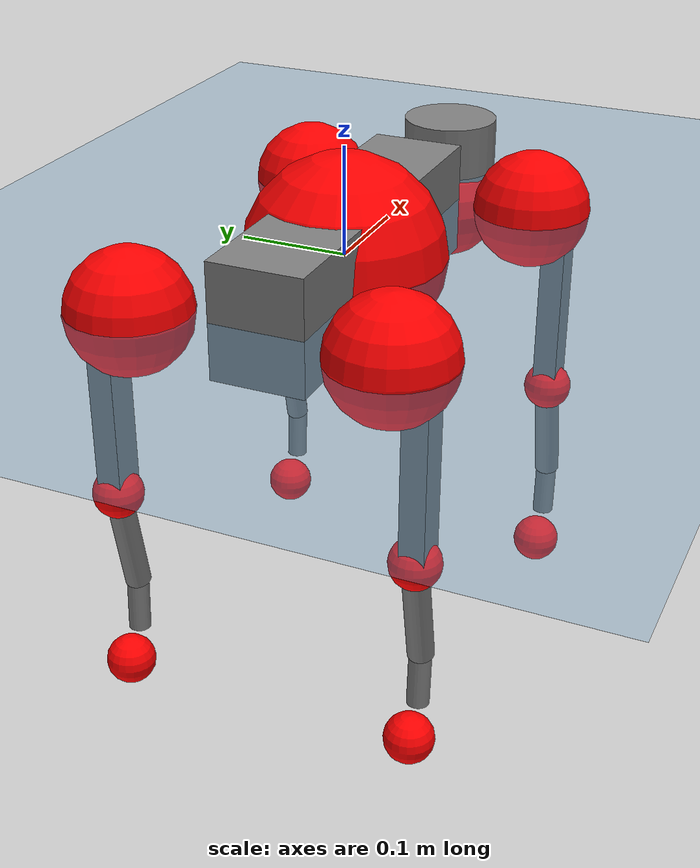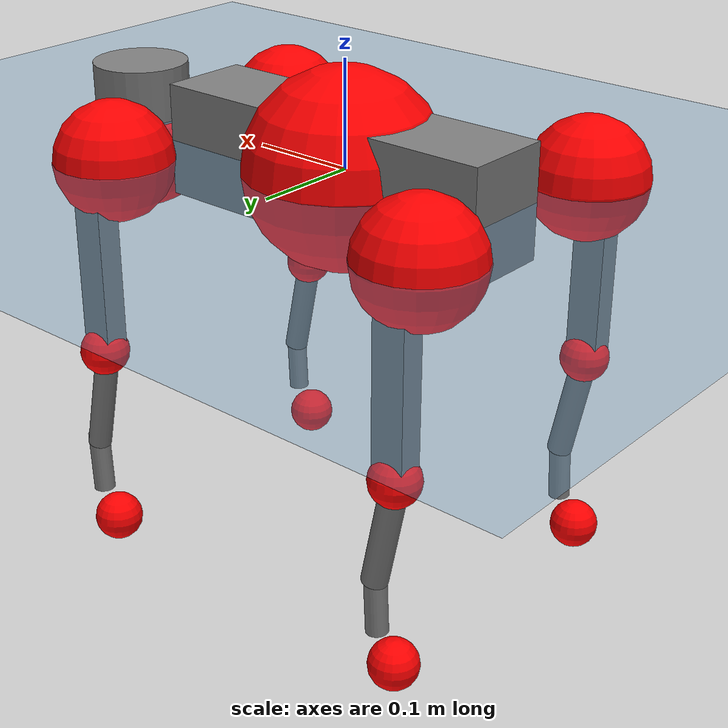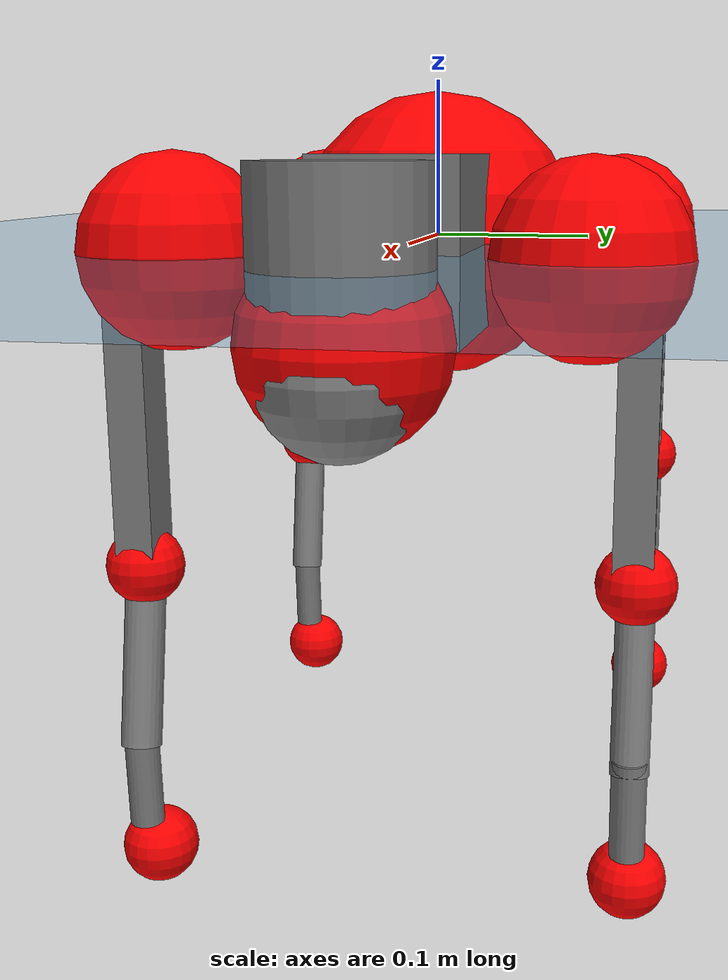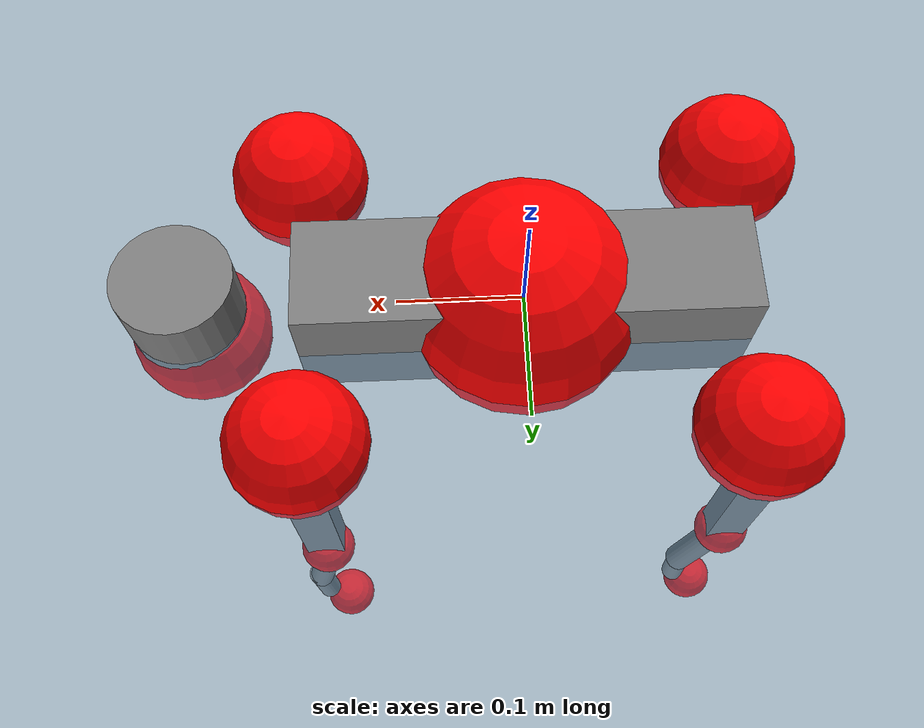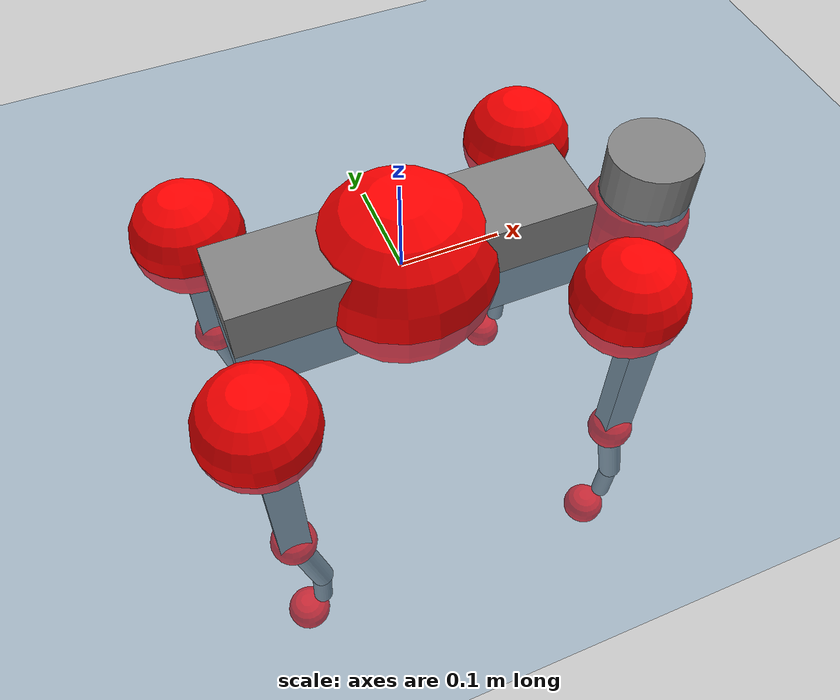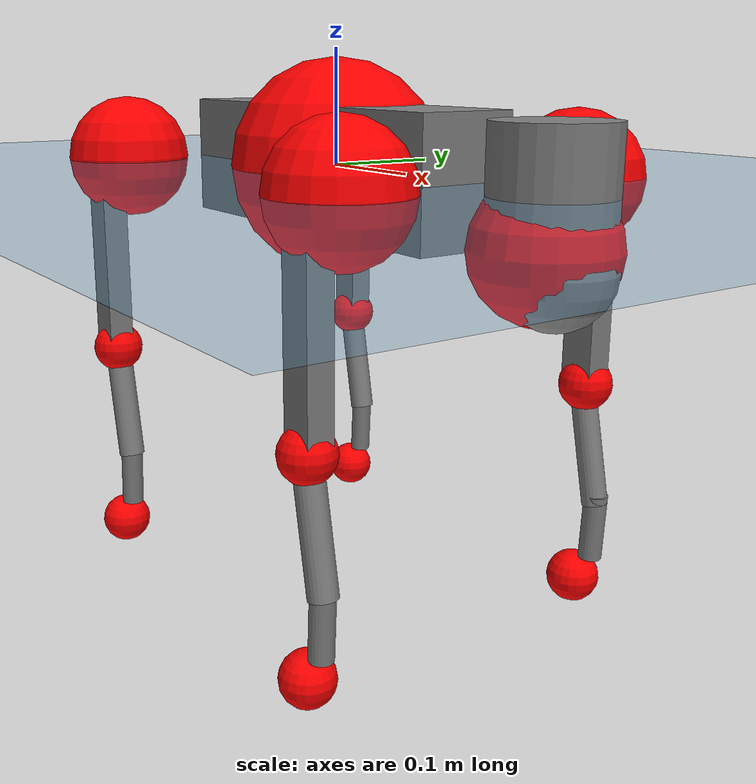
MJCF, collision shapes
<mujoco model="go2">
  <compiler angle="radian" assetdir="assets" balanceinertia="true" inertiafromgeom="false"/>

  <option timestep="0.005" density="1.2" viscosity="2e-05"/>

  <size nkey="1"/>

  <visual>
    <quality shadowsize="8192"/>
    <map shadowclip="0.5"/>
  </visual>

  <default>
    <default class="/">
      <geom contype="0" conaffinity="0" group="1" solref="-1000 -80"/>
      <site size="0.01 0.005 0.005" group="5"/>
      <general forcelimited="true" biastype="affine" gainprm="20" biasprm="0 -20 -0.5"/>
      <default class="go2">
        <joint armature="0.01" damping="0.01" frictionloss="0.2"/>
        <geom condim="1" margin="0.001"/>
        <default class="visual">
          <geom type="mesh" group="2"/>
        </default>
        <default class="collision">
          <geom group="3"/>
          <default class="foot">
            <geom size="0.022 0 0" condim="6" priority="1" friction="0.8 0.02 0.01" solimp="0.015 1 0.022"/>
          </default>
        </default>
        <default class="reward_collision_sphere">
          <geom group="5" rgba="1 0 0 1"/>
        </default>
      </default>
    </default>
  </default>

  <asset>
    <texture type="skybox" colorspace="auto" name="//unnamed_texture_0" builtin="gradient" rgb1="0.95 0.95 0.95" rgb2="0.95 0.95 0.95" width="100" height="600"/>
    <texture type="2d" colorspace="auto" name="texplane" builtin="checker" rgb1="0.345 0.575 0.748" rgb2="0.345 0.575 0.748" markrgb="1 1 1" width="512" height="512"/>
    <material name="MatPlane" class="/" texture="texplane" texuniform="true" texrepeat="2 2" specular="0.9"/>
    <material name="metal" class="/" rgba="0.9 0.95 0.95 1"/>
    <material name="black" class="/" rgba="0 0 0 1"/>
    <material name="white" class="/"/>
    <material name="gray" class="/" rgba="0.671705 0.692426 0.77427 1"/>
    <mesh name="base_0" class="/" file="base_0.obj"/>
    <mesh name="base_1" class="/" file="base_1.obj"/>
    <mesh name="base_2" class="/" file="base_2.obj"/>
    <mesh name="base_3" class="/" file="base_3.obj"/>
    <mesh name="base_4" class="/" file="base_4.obj"/>
    <mesh name="hip_0" class="/" file="hip_0.obj"/>
    <mesh name="hip_1" class="/" file="hip_1.obj"/>
    <mesh name="thigh_0" class="/" file="thigh_0.obj"/>
    <mesh name="thigh_1" class="/" file="thigh_1.obj"/>
    <mesh name="thigh_mirror_0" class="/" file="thigh_mirror_0.obj"/>
    <mesh name="thigh_mirror_1" class="/" file="thigh_mirror_1.obj"/>
    <mesh name="calf_0" class="/" file="calf_0.obj"/>
    <mesh name="calf_1" class="/" file="calf_1.obj"/>
    <mesh name="calf_mirror_0" class="/" file="calf_mirror_0.obj"/>
    <mesh name="calf_mirror_1" class="/" file="calf_mirror_1.obj"/>
    <mesh name="foot" class="/" file="foot.obj"/>
  </asset>

  <worldbody>
    <geom name="floor" class="/" size="100 100 0.125" type="plane" group="0" material="MatPlane"/>
    <light name="toplight_shadow" class="/" pos="0 0 5" dir="0.0990148 0.0990148 -0.990148" type="directional" ambient="0.04 0.04 0.04" diffuse="0.55 0.55 0.55" specular="0.12 0.12 0.12"/>
    <light name="toplight_fill" class="/" pos="0 0 5" dir="0.0990148 0.0990148 -0.990148" type="directional" castshadow="false" ambient="0.04 0.04 0.04" diffuse="0.3 0.3 0.3" specular="0.08 0.08 0.08"/>
    <body name="trunk" childclass="go2" pos="0.000700605 -0.000303193 8.29175e-05" quat="1 -3.31127e-05 0.000211599 0.000413009">
      <inertial pos="0.0170923 -0.00299552 -0.00528943" quat="0.00258732 0.714545 -0.00481392 0.699569" mass="5.73378" diaginertia="0.0719055 0.100336 0.0112379"/>
      <joint name="//unnamed_joint_0" type="free" armature="0" damping="0" frictionloss="0"/>
      <geom name="//unnamed_geom_1" class="visual" material="black" mesh="base_0"/>
      <geom name="//unnamed_geom_2" class="visual" material="black" mesh="base_1"/>
      <geom name="//unnamed_geom_3" class="visual" material="black" mesh="base_2"/>
      <geom name="//unnamed_geom_4" class="visual" material="white" mesh="base_3"/>
      <geom name="//unnamed_geom_5" class="visual" material="gray" mesh="base_4"/>
      <geom name="trunk_1" class="collision" size="0.17489 0.0434669 0.0529971" type="box"/>
      <geom name="trunk_2" class="collision" size="0.0464887 0.0418398" pos="0.263491 0 0.00858554" type="cylinder"/>
      <geom name="trunk_3" class="collision" size="0.0436993" pos="0.270887 0 -0.0515132"/>
      <geom name="//unnamed_geom_9" class="reward_collision_sphere" size="0.0929773"/>
      <geom name="//unnamed_geom_10" class="reward_collision_sphere" size="0.0557864" pos="0.258868 0 -0.0386349"/>
      <site name="imu" pos="-0.0101698 0.000406856 0.0228245" size="0.00929773"/>
      <camera name="track" pos="0 -2.01247 0" quat="0.707107 0.707107 0 0" mode="trackcom"/>
      <camera name="ego_camera" pos="0.288453 0 0.0386349" quat="-0.5 -0.5 0.5 0.5"/>
      <body name="FL_hip" pos="0.175386 0.0439836 -0.00210178" quat="1 -0.000135596 -0.000319512 0.000355861">
        <inertial pos="-0.00504652 -0.000341897 -0.000238412" quat="0.497365 0.499664 0.504972 0.497964" mass="0.539233" diaginertia="0.000583752 0.000577194 0.000217309"/>
        <joint name="FL_hip_joint" pos="0 0 0" axis="0.999961 -0.00840809 0.00279681" range="-1.04545 1.06153" armature="0.00949432" damping="0.0141065" frictionloss="0.164643"/>
        <geom name="//unnamed_geom_11" class="visual" material="metal" mesh="hip_0"/>
        <geom name="//unnamed_geom_12" class="visual" material="gray" mesh="hip_1"/>
        <geom name="//unnamed_geom_13" class="collision" size="0.0427696 0.0185955" pos="0 0.0804989 0" quat="0.707107 0.707107 0 0" type="cylinder"/>
        <geom name="//unnamed_geom_14" class="reward_collision_sphere" size="0.0557864" pos="0 0.0704365 0"/>
        <body name="FL_thigh" pos="-0.00264004 0.0980216 0.00249427" quat="0.999999 0.000789204 -0.000885262 -0.000609503">
          <inertial pos="-0.00356235 -0.022225 -0.0263624" quat="0.826663 0.0801546 -0.00899943 0.556886" mass="0.902774" diaginertia="0.00403446 0.00587658 0.000410581"/>
          <joint name="FL_thigh_joint" pos="0 0 0" axis="-0.000228928 1 -9.5716e-05" stiffness="0.00888539" range="-1.51301 3.53703" armature="0.00964975" damping="0.0167905" frictionloss="0.16938"/>
          <geom name="//unnamed_geom_15" class="visual" material="metal" mesh="thigh_0"/>
          <geom name="//unnamed_geom_16" class="visual" material="gray" mesh="thigh_1"/>
          <geom name="//unnamed_geom_17" class="collision" size="0.0990208 0.0113897 0.0158061" pos="0 0 -0.091436" quat="0.707107 0 0.707107 0" type="box"/>
          <body name="FL_calf" pos="0.000210437 0.00187877 -0.182346" quat="1 0.000341297 0.000180988 0.000243403">
            <inertial pos="0.00564201 -0.0014918 -0.122375" quat="0.711818 0.00354154 -0.00385437 0.702345" mass="0.196508" diaginertia="0.000984737 0.00151855 2.48089e-05"/>
            <joint name="FL_calf_joint" pos="0 0 0" axis="0.00436601 0.999867 -0.0157023" range="-2.67906 -0.829257" armature="0.00927483" damping="0.002236" frictionloss="0.190249"/>
            <geom name="//unnamed_geom_18" class="visual" material="gray" mesh="calf_0"/>
            <geom name="//unnamed_geom_19" class="visual" material="black" mesh="calf_1"/>
            <geom name="FL_calf0" class="collision" size="0.0111573 0.0557864" pos="0.00739624 0 -0.0515132" quat="0.994493 0 -0.104807 0" type="cylinder"/>
            <geom name="//unnamed_geom_21" class="collision" size="0.0102275 0.0302176" pos="0.0184906 0 -0.127066" quat="0.999688 0 0.0249974 0" type="cylinder"/>
            <geom name="//unnamed_geom_22" class="visual" pos="0 0 -0.182872" quat="1 0 0 0" material="black" mesh="foot"/>
            <geom name="FL_foot" class="foot" size="0.0159394" pos="-0.00184906 0 -0.182872"/>
            <geom name="//unnamed_geom_24" class="reward_collision_sphere" size="0.0232443"/>
            <geom name="//unnamed_geom_25" class="reward_collision_sphere" size="0.0232443" pos="-0.00184906 0 -0.182872"/>
            <site name="FL_foot" class="foot" pos="-0.00184906 0 -0.182872" size="0.00929773"/>
          </body>
        </body>
      </body>
      <body name="FR_hip" pos="0.176523 -0.0464267 -0.000114602" quat="1 -4.27982e-05 0.000218437 0.000230246">
        <inertial pos="-0.0068392 -0.00391566 -0.00270647" quat="0.494838 0.497332 0.502986 0.504779" mass="0.539623" diaginertia="0.000569127 0.000627177 0.000213669"/>
        <joint name="FR_hip_joint" pos="0 0 0" axis="0.999889 0.0148818 0.0010833" stiffness="0.00080772" range="-1.07219 1.0481" armature="0.00943289" damping="0" frictionloss="0.188591"/>
        <geom name="//unnamed_geom_26" class="visual" pos="0 1.28655e-09 5.51827e-08" quat="4.63268e-05 1 0 0" material="metal" mesh="hip_0"/>
        <geom name="//unnamed_geom_27" class="visual" pos="0 2.08565e-09 -1.36488e-07" quat="4.63268e-05 1 0 0" material="gray" mesh="hip_1"/>
        <geom name="//unnamed_geom_28" class="collision" size="0.0427696 0.0185955" pos="0 -0.0804989 0" quat="0.707107 0.707107 0 0" type="cylinder"/>
        <geom name="//unnamed_geom_29" class="reward_collision_sphere" size="0.0557864" pos="0 -0.0704365 0"/>
        <body name="FR_thigh" pos="0.00200725 -0.0982214 -0.00224701" quat="0.999999 0.000582993 -0.000910583 -0.000755221">
          <inertial pos="-0.000891773 0.0227785 -0.029834" quat="0.545132 -0.0147364 0.0863969 0.833756" mass="0.969846" diaginertia="0.00396346 0.00589437 0.000429306"/>
          <joint name="FR_thigh_joint" pos="0 0 0" axis="0.00260571 -0.999992 -0.00317607" range="-3.49062 1.59051" armature="0.00836337" damping="0.0137508" frictionloss="0.192779"/>
          <geom name="//unnamed_geom_30" class="visual" material="metal" mesh="thigh_mirror_0"/>
          <geom name="//unnamed_geom_31" class="visual" material="gray" mesh="thigh_mirror_1"/>
          <geom name="//unnamed_geom_32" class="collision" size="0.0990208 0.0113897 0.0158061" pos="0 0 -0.091436" quat="0.707107 0 0.707107 0" type="box"/>
          <body name="FR_calf" pos="-0.00176224 -0.000458737 -0.182941" quat="1 -0.000252708 -0.000128279 -0.000920726">
            <inertial pos="0.003112 0.000773234 -0.121469" quat="0.695706 0.000404986 -0.0022176 0.718323" mass="0.205234" diaginertia="0.00104872 0.001541 2.55636e-05"/>
            <joint name="FR_calf_joint" pos="0 0 0" axis="0.00101652 -0.999963 -0.00848327" range="0.784195 2.68328" armature="0.0106993" damping="0.0205296" frictionloss="0.19493"/>
            <geom name="//unnamed_geom_33" class="visual" material="gray" mesh="calf_mirror_0"/>
            <geom name="//unnamed_geom_34" class="visual" material="black" mesh="calf_mirror_1"/>
            <geom name="FR_calf0" class="collision" size="0.0120871 0.0557864" pos="0.0092453 0 -0.0515132" quat="0.995004 0 -0.0998334 0" type="cylinder"/>
            <geom name="//unnamed_geom_36" class="collision" size="0.0102275 0.0302176" pos="0.0184906 0 -0.127066" quat="0.999688 0 0.0249974 0" type="cylinder"/>
            <geom name="//unnamed_geom_37" class="visual" pos="0 0 -0.182872" quat="1 0 0 0" material="black" mesh="foot"/>
            <geom name="FR_foot" class="foot" size="0.0203274" pos="-0.00184906 0 -0.182872"/>
            <geom name="//unnamed_geom_39" class="reward_collision_sphere" size="0.0232443"/>
            <geom name="//unnamed_geom_40" class="reward_collision_sphere" size="0.0232443" pos="-0.00184906 0 -0.182872"/>
            <site name="FR_foot" class="foot" pos="-0.00184906 0 -0.182872" size="0.00929773"/>
          </body>
        </body>
      </body>
      <body name="RL_hip" pos="-0.175927 0.0451082 -0.00303371" quat="1 -5.60259e-07 -1.23738e-06 1.19035e-05">
        <inertial pos="0.00479239 0.00467039 -0.00147281" quat="0.5031 0.507281 0.499713 0.489739" mass="0.563834" diaginertia="0.0006332 0.000642537 0.000226661"/>
        <joint name="RL_hip_joint" pos="0 0 0" axis="-0.999974 0.00721862 0.000334904" range="-1.05733 1.04398" armature="0.00974721" damping="0" frictionloss="0.186863"/>
        <geom name="//unnamed_geom_41" class="visual" pos="-5.74759e-10 0 -1.12666e-07" quat="4.63268e-05 0 1 0" material="metal" mesh="hip_0"/>
        <geom name="//unnamed_geom_42" class="visual" pos="-9.31753e-10 0 -9.99187e-08" quat="4.63268e-05 0 1 0" material="gray" mesh="hip_1"/>
        <geom name="//unnamed_geom_43" class="collision" size="0.0427696 0.0185955" pos="0 0.0804989 0" quat="0.707107 0.707107 0 0" type="cylinder"/>
        <geom name="//unnamed_geom_44" class="reward_collision_sphere" size="0.0557864" pos="0 0.0704365 0"/>
        <body name="RL_thigh" pos="0.000435751 0.0957181 0.00100313" quat="1 -4.36573e-06 -1.03041e-05 0.000182952">
          <inertial pos="-0.00560711 -0.0220889 -0.0307242" quat="0.829127 0.0847004 -0.0213698 0.552194" mass="0.890806" diaginertia="0.00377884 0.00601928 0.000398786"/>
          <joint name="RL_thigh_joint" pos="0 0 0" axis="0.00235423 0.999961 0.00849817" stiffness="0.0140331" range="-0.548945 4.49181" armature="0.00883539" damping="0" frictionloss="0.185792"/>
          <geom name="//unnamed_geom_45" class="visual" material="metal" mesh="thigh_0"/>
          <geom name="//unnamed_geom_46" class="visual" material="gray" mesh="thigh_1"/>
          <geom name="//unnamed_geom_47" class="collision" size="0.0990208 0.0113897 0.0158061" pos="0 0 -0.091436" quat="0.707107 0 0.707107 0" type="box"/>
          <body name="RL_calf" pos="-0.00074132 0.000500725 -0.183071" quat="1 -0.000290812 -0.000118876 8.46323e-05">
            <inertial pos="0.00712198 0.00223811 -0.121315" quat="0.711531 -0.00635192 0.00239755 0.702621" mass="0.198962" diaginertia="0.00100371 0.00160489 2.5371e-05"/>
            <joint name="RL_calf_joint" pos="0 0 0" axis="-0.0069802 0.999974 0.00206071" stiffness="0.00579404" range="-2.66666 -0.88537" armature="0.0105758" damping="0.017886" frictionloss="0.160407"/>
            <geom name="//unnamed_geom_48" class="visual" material="gray" mesh="calf_0"/>
            <geom name="//unnamed_geom_49" class="visual" material="black" mesh="calf_1"/>
            <geom name="RL_calf0" class="collision" size="0.0120871 0.0557864" pos="0.0092453 0 -0.0515132" quat="0.995004 0 -0.0998334 0" type="cylinder"/>
            <geom name="//unnamed_geom_51" class="collision" size="0.0102275 0.0302176" pos="0.0184906 0 -0.127066" quat="0.999688 0 0.0249974 0" type="cylinder"/>
            <geom name="//unnamed_geom_52" class="visual" pos="0 0 -0.182872" quat="1 0 0 0" material="black" mesh="foot"/>
            <geom name="RL_foot" class="foot" size="0.0183916" pos="-0.00184906 0 -0.182872"/>
            <geom name="//unnamed_geom_54" class="reward_collision_sphere" size="0.0232443"/>
            <geom name="//unnamed_geom_55" class="reward_collision_sphere" size="0.0232443" pos="-0.00184906 0 -0.182872"/>
            <site name="RL_foot" class="foot" pos="-0.00184906 0 -0.182872" size="0.00929773"/>
          </body>
        </body>
      </body>
      <body name="RR_hip" pos="-0.176586 -0.0482391 0.000944792" quat="1 -1.0454e-05 0.000303107 -0.000475889">
        <inertial pos="0.00301332 -0.00026329 -0.0028036" quat="0.508271 0.492765 0.495623 0.503191" mass="0.547312" diaginertia="0.000578098 0.000600154 0.000217329"/>
        <joint name="RR_hip_joint" pos="0 0 0" axis="-0.999904 0.00836312 0.011068" stiffness="1.91625e-05" range="-1.10185 1.07472" armature="0.00901487" damping="0" frictionloss="0.186212"/>
        <geom name="//unnamed_geom_56" class="visual" pos="5.77588e-10 1.28655e-09 -1.67849e-07" quat="2.14617e-09 4.63268e-05 4.63268e-05 -1" material="metal" mesh="hip_0"/>
        <geom name="//unnamed_geom_57" class="visual" pos="9.24756e-10 2.08565e-09 3.65691e-08" quat="2.14617e-09 4.63268e-05 4.63268e-05 -1" material="gray" mesh="hip_1"/>
        <geom name="//unnamed_geom_58" class="collision" size="0.0427696 0.0185955" pos="0 -0.0804989 0" quat="0.707107 0.707107 0 0" type="cylinder"/>
        <geom name="//unnamed_geom_59" class="reward_collision_sphere" size="0.0557864" pos="0 -0.0704365 0"/>
        <body name="RR_thigh" pos="0.00255199 -0.0954235 -0.00163992" quat="0.999999 0.000768598 0.000997884 -9.85671e-05">
          <inertial pos="-0.00278884 0.0243611 -0.0289328" quat="0.551559 -0.0206402 0.0835765 0.829682" mass="0.871942" diaginertia="0.00378347 0.00589592 0.00040374"/>
          <joint name="RR_thigh_joint" pos="0 0 0" axis="3.55576e-06 -1 3.49172e-05" stiffness="0.00325596" range="-4.49972 0.53174" armature="0.00980413" damping="0.0181342" frictionloss="0.187541"/>
          <geom name="//unnamed_geom_60" class="visual" material="metal" mesh="thigh_mirror_0"/>
          <geom name="//unnamed_geom_61" class="visual" material="gray" mesh="thigh_mirror_1"/>
          <geom name="//unnamed_geom_62" class="collision" size="0.0990208 0.0113897 0.0158061" pos="0 0 -0.091436" quat="0.707107 0 0.707107 0" type="box"/>
          <body name="RR_calf" pos="0.000403268 0.00220452 -0.182478" quat="0.999999 0.000401572 0.00115223 -0.000400984">
            <inertial pos="0.00835098 -0.000286456 -0.122209" quat="0.703298 0.00189805 0.0131842 0.710771" mass="0.197062" diaginertia="0.000983875 0.00151116 2.43146e-05"/>
            <joint name="RR_calf_joint" pos="0 0 0" axis="-0.00360585 -0.999988 -0.00317121" range="0.826946 2.78028" armature="0.00932349" damping="0.020366" frictionloss="0.19409"/>
            <geom name="//unnamed_geom_63" class="visual" material="gray" mesh="calf_mirror_0"/>
            <geom name="//unnamed_geom_64" class="visual" material="black" mesh="calf_mirror_1"/>
            <geom name="RR_calf0" class="collision" size="0.0120871 0.0557864" pos="0.0092453 0 -0.0515132" quat="0.995004 0 -0.0998334 0" type="cylinder"/>
            <geom name="//unnamed_geom_66" class="collision" size="0.0102275 0.0302176" pos="0.0184906 0 -0.127066" quat="0.999688 0 0.0249974 0" type="cylinder"/>
            <geom name="//unnamed_geom_67" class="visual" pos="0 0 -0.182872" quat="1 0 0 0" material="black" mesh="foot"/>
            <geom name="RR_foot" class="foot" size="0.019347" pos="-0.00184906 0 -0.182872"/>
            <geom name="//unnamed_geom_69" class="reward_collision_sphere" size="0.0232443"/>
            <geom name="//unnamed_geom_70" class="reward_collision_sphere" size="0.0232443" pos="-0.00184906 0 -0.182872"/>
            <site name="RR_foot" class="foot" pos="-0.00184906 0 -0.182872" size="0.00929773"/>
          </body>
        </body>
      </body>
    </body>
  </worldbody>

  <contact>
    <pair class="/" geom1="floor" geom2="FL_foot" name="//unnamed_contact_0"/>
    <pair class="/" geom1="floor" geom2="FR_foot" name="//unnamed_contact_1"/>
    <pair class="/" geom1="floor" geom2="RL_foot" name="//unnamed_contact_2"/>
    <pair class="/" geom1="floor" geom2="RR_foot" name="//unnamed_contact_3"/>
  </contact>

  <actuator>
    <general name="FL_hip" class="/" joint="FL_hip_joint" forcerange="-19.7512 19.7512" gainprm="17.8944" biasprm="0 -17.8944 -0.444856"/>
    <general name="FL_thigh" class="/" joint="FL_thigh_joint" forcerange="-19.8981 19.8981" gainprm="17.8944" biasprm="0 -17.8944 -0.444856"/>
    <general name="FL_calf" class="/" joint="FL_calf_joint" forcerange="-41.9083 41.9083" gainprm="17.8944" biasprm="0 -17.8944 -0.444856"/>
    <general name="FR_hip" class="/" joint="FR_hip_joint" forcerange="-22.4314 22.4314" gainprm="17.8944" biasprm="0 -17.8944 -0.444856"/>
    <general name="FR_thigh" class="/" joint="FR_thigh_joint" forcerange="-24.0335 24.0335" gainprm="17.8944" biasprm="0 -17.8944 -0.444856"/>
    <general name="FR_calf" class="/" joint="FR_calf_joint" forcerange="-43.7051 43.7051" gainprm="17.8944" biasprm="0 -17.8944 -0.444856"/>
    <general name="RL_hip" class="/" joint="RL_hip_joint" forcerange="-22.0843 22.0843" gainprm="17.8944" biasprm="0 -17.8944 -0.444856"/>
    <general name="RL_thigh" class="/" joint="RL_thigh_joint" forcerange="-19.9792 19.9792" gainprm="17.8944" biasprm="0 -17.8944 -0.444856"/>
    <general name="RL_calf" class="/" joint="RL_calf_joint" forcerange="-42.7369 42.7369" gainprm="17.8944" biasprm="0 -17.8944 -0.444856"/>
    <general name="RR_hip" class="/" joint="RR_hip_joint" forcerange="-22.8554 22.8554" gainprm="17.8944" biasprm="0 -17.8944 -0.444856"/>
    <general name="RR_thigh" class="/" joint="RR_thigh_joint" forcerange="-24.3311 24.3311" gainprm="17.8944" biasprm="0 -17.8944 -0.444856"/>
    <general name="RR_calf" class="/" joint="RR_calf_joint" forcerange="-41.1467 41.1467" gainprm="17.8944" biasprm="0 -17.8944 -0.444856"/>
  </actuator>

  <sensor>
    <gyro site="imu" name="imu_angular_velocity"/>
    <velocimeter site="imu" name="imu_linear_velocity"/>
    <framelinvel objtype="site" objname="FL_foot" name="FL_foot_global_linear_velocity"/>
    <framelinvel objtype="site" objname="FR_foot" name="FR_foot_global_linear_velocity"/>
    <framelinvel objtype="site" objname="RL_foot" name="RL_foot_global_linear_velocity"/>
    <framelinvel objtype="site" objname="RR_foot" name="RR_foot_global_linear_velocity"/>
  </sensor>

  <keyframe>
    <key name="home" qpos="0 0 0.325 1 0 0 0 0.1 0.8 -1.5 -0.1 -0.8 1.5 -0.1 0.8 -1.5 0.1 -0.8 1.5"/>
  </keyframe>
</mujoco>
